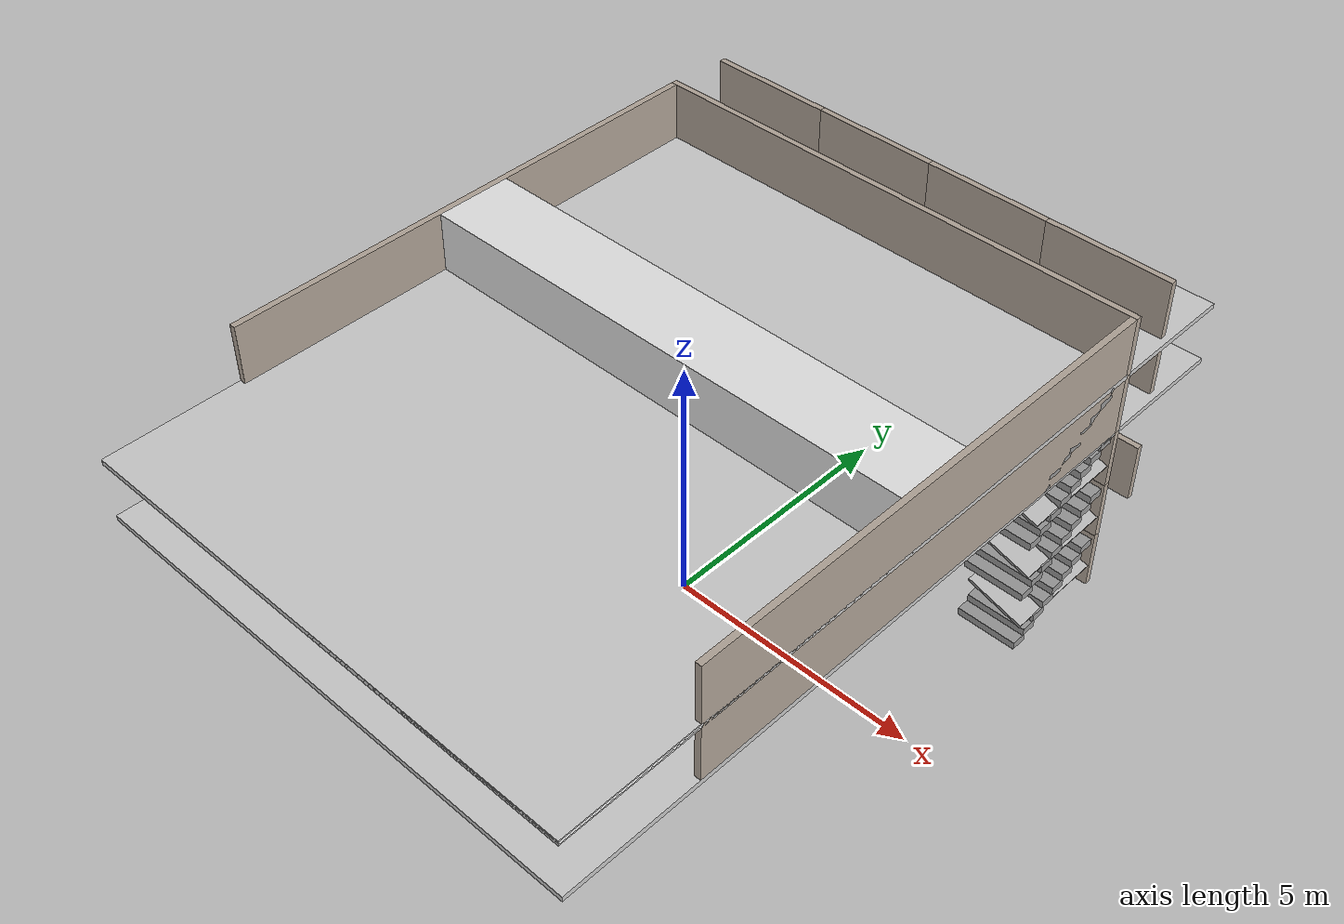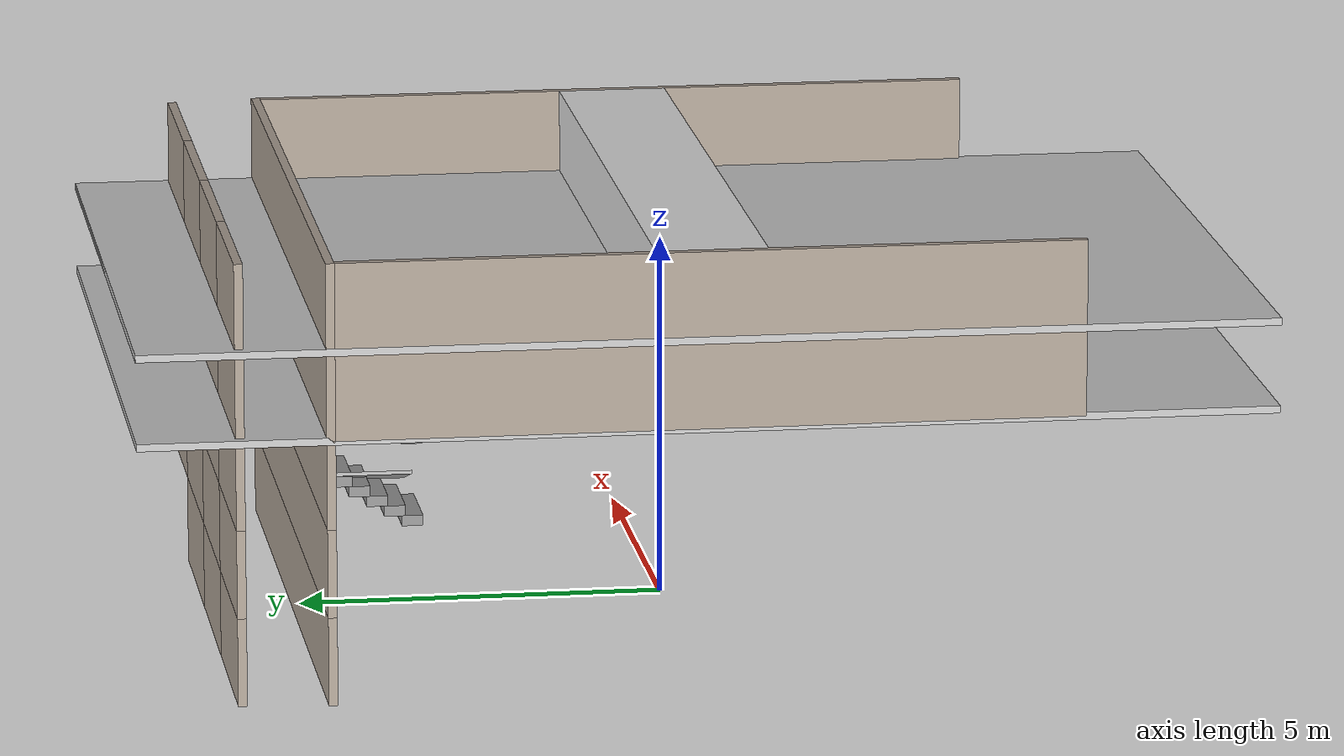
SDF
<sdf version="1.7">
 <model name="HotelBuilding">
  <static>true</static>
  <link name="corridor_front_wall_f0">
   <pose>0 5.06 0.6 0 0 0</pose>
   <visual name="visual">
    <geometry><box><size>10.24 0.12 1.2</size></box></geometry>
    <material><ambient>0.6 0.55 0.5 1</ambient><diffuse>0.7 0.65 0.6 1</diffuse></material>
   </visual>
   <collision name="collision"><geometry><box><size>10.24 0.12 1.2</size></box></geometry></collision>
  </link>
  <link name="room_front_wall_f0_r0">
   <pose>-3.75 6.25 0.6 0 0 0</pose>
   <visual name="visual">
    <geometry><box><size>2.5 0.12 1.2</size></box></geometry>
    <material><ambient>0.6 0.55 0.5 1</ambient><diffuse>0.7 0.65 0.6 1</diffuse></material>
   </visual>
   <collision name="collision"><geometry><box><size>2.5 0.12 1.2</size></box></geometry></collision>
  </link>
  <link name="room_front_wall_f0_r1">
   <pose>-1.25 6.25 0.6 0 0 0</pose>
   <visual name="visual">
    <geometry><box><size>2.5 0.12 1.2</size></box></geometry>
    <material><ambient>0.6 0.55 0.5 1</ambient><diffuse>0.7 0.65 0.6 1</diffuse></material>
   </visual>
   <collision name="collision"><geometry><box><size>2.5 0.12 1.2</size></box></geometry></collision>
  </link>
  <link name="room_front_wall_f0_r2">
   <pose>1.25 6.25 0.6 0 0 0</pose>
   <visual name="visual">
    <geometry><box><size>2.5 0.12 1.2</size></box></geometry>
    <material><ambient>0.6 0.55 0.5 1</ambient><diffuse>0.7 0.65 0.6 1</diffuse></material>
   </visual>
   <collision name="collision"><geometry><box><size>2.5 0.12 1.2</size></box></geometry></collision>
  </link>
  <link name="corridor_front_wall_f1">
   <pose>0 5.06 1.7999999999999998 0 0 0</pose>
   <visual name="visual">
    <geometry><box><size>10.24 0.12 1.2</size></box></geometry>
    <material><ambient>0.6 0.55 0.5 1</ambient><diffuse>0.7 0.65 0.6 1</diffuse></material>
   </visual>
   <collision name="collision"><geometry><box><size>10.24 0.12 1.2</size></box></geometry></collision>
  </link>
  <link name="room_front_wall_f1_r0">
   <pose>-3.75 6.25 1.7999999999999998 0 0 0</pose>
   <visual name="visual">
    <geometry><box><size>2.5 0.12 1.2</size></box></geometry>
    <material><ambient>0.6 0.55 0.5 1</ambient><diffuse>0.7 0.65 0.6 1</diffuse></material>
   </visual>
   <collision name="collision"><geometry><box><size>2.5 0.12 1.2</size></box></geometry></collision>
  </link>
  <link name="room_front_wall_f1_r1">
   <pose>-1.25 6.25 1.7999999999999998 0 0 0</pose>
   <visual name="visual">
    <geometry><box><size>2.5 0.12 1.2</size></box></geometry>
    <material><ambient>0.6 0.55 0.5 1</ambient><diffuse>0.7 0.65 0.6 1</diffuse></material>
   </visual>
   <collision name="collision"><geometry><box><size>2.5 0.12 1.2</size></box></geometry></collision>
  </link>
  <link name="room_front_wall_f1_r2">
   <pose>1.25 6.25 1.7999999999999998 0 0 0</pose>
   <visual name="visual">
    <geometry><box><size>2.5 0.12 1.2</size></box></geometry>
    <material><ambient>0.6 0.55 0.5 1</ambient><diffuse>0.7 0.65 0.6 1</diffuse></material>
   </visual>
   <collision name="collision"><geometry><box><size>2.5 0.12 1.2</size></box></geometry></collision>
  </link>
  <link name="room_front_wall_f1_r3">
   <pose>3.75 6.25 1.7999999999999998 0 0 0</pose>
   <visual name="visual">
    <geometry><box><size>2.5 0.12 1.2</size></box></geometry>
    <material><ambient>0.6 0.55 0.5 1</ambient><diffuse>0.7 0.65 0.6 1</diffuse></material>
   </visual>
   <collision name="collision"><geometry><box><size>2.5 0.12 1.2</size></box></geometry></collision>
  </link>
  <link name="corridor_front_wall_f2">
   <pose>0 5.06 3.0 0 0 0</pose>
   <visual name="visual">
    <geometry><box><size>10.24 0.12 1.2</size></box></geometry>
    <material><ambient>0.6 0.55 0.5 1</ambient><diffuse>0.7 0.65 0.6 1</diffuse></material>
   </visual>
   <collision name="collision"><geometry><box><size>10.24 0.12 1.2</size></box></geometry></collision>
  </link>
  <link name="room_front_wall_f2_r0">
   <pose>-3.75 6.25 3.0 0 0 0</pose>
   <visual name="visual">
    <geometry><box><size>2.5 0.12 1.2</size></box></geometry>
    <material><ambient>0.6 0.55 0.5 1</ambient><diffuse>0.7 0.65 0.6 1</diffuse></material>
   </visual>
   <collision name="collision"><geometry><box><size>2.5 0.12 1.2</size></box></geometry></collision>
  </link>
  <link name="room_front_wall_f2_r1">
   <pose>-1.25 6.25 3.0 0 0 0</pose>
   <visual name="visual">
    <geometry><box><size>2.5 0.12 1.2</size></box></geometry>
    <material><ambient>0.6 0.55 0.5 1</ambient><diffuse>0.7 0.65 0.6 1</diffuse></material>
   </visual>
   <collision name="collision"><geometry><box><size>2.5 0.12 1.2</size></box></geometry></collision>
  </link>
  <link name="room_front_wall_f2_r2">
   <pose>1.25 6.25 3.0 0 0 0</pose>
   <visual name="visual">
    <geometry><box><size>2.5 0.12 1.2</size></box></geometry>
    <material><ambient>0.6 0.55 0.5 1</ambient><diffuse>0.7 0.65 0.6 1</diffuse></material>
   </visual>
   <collision name="collision"><geometry><box><size>2.5 0.12 1.2</size></box></geometry></collision>
  </link>
  <link name="floor_base_f3">
   <pose>0 0 3.5999999999999996 0 0 0</pose>
   <visual name="visual">
    <geometry><box><size>10.24 15.24 0.1</size></box></geometry>
    <material><ambient>0.7 0.7 0.7 1</ambient><diffuse>0.8 0.8 0.8 1</diffuse></material>
   </visual>
   <collision name="collision">
    <geometry><box><size>10.24 15.24 0.1</size></box></geometry>
    <surface><friction><ode><mu>1.0</mu><mu2>1.0</mu2></ode></friction></surface>
   </collision>
  </link>
  <link name="corridor_f3">
   <pose>0 0 4.199999999999999 0 0 0</pose>
   <visual name="visual">
    <geometry><box><size>10.0 1.5 1.2</size></box></geometry>
    <material><ambient>0.85 0.85 0.85 1</ambient><diffuse>0.9 0.9 0.9 1</diffuse></material>
   </visual>
   <collision name="collision">
    <geometry><box><size>10.0 1.5 1.2</size></box></geometry>
    <surface><friction><ode><mu>1.0</mu><mu2>1.0</mu2></ode></friction></surface>
   </collision>
  </link>
  <link name="corridor_front_wall_f3">
   <pose>0 5.06 4.199999999999999 0 0 0</pose>
   <visual name="visual">
    <geometry><box><size>10.24 0.12 1.2</size></box></geometry>
    <material><ambient>0.6 0.55 0.5 1</ambient><diffuse>0.7 0.65 0.6 1</diffuse></material>
   </visual>
   <collision name="collision"><geometry><box><size>10.24 0.12 1.2</size></box></geometry></collision>
  </link>
  <link name="room_front_wall_f3_r0">
   <pose>-3.75 6.25 4.199999999999999 0 0 0</pose>
   <visual name="visual">
    <geometry><box><size>2.5 0.12 1.2</size></box></geometry>
    <material><ambient>0.6 0.55 0.5 1</ambient><diffuse>0.7 0.65 0.6 1</diffuse></material>
   </visual>
   <collision name="collision"><geometry><box><size>2.5 0.12 1.2</size></box></geometry></collision>
  </link>
  <link name="room_front_wall_f3_r1">
   <pose>-1.25 6.25 4.199999999999999 0 0 0</pose>
   <visual name="visual">
    <geometry><box><size>2.5 0.12 1.2</size></box></geometry>
    <material><ambient>0.6 0.55 0.5 1</ambient><diffuse>0.7 0.65 0.6 1</diffuse></material>
   </visual>
   <collision name="collision"><geometry><box><size>2.5 0.12 1.2</size></box></geometry></collision>
  </link>
  <link name="room_front_wall_f3_r2">
   <pose>1.25 6.25 4.199999999999999 0 0 0</pose>
   <visual name="visual">
    <geometry><box><size>2.5 0.12 1.2</size></box></geometry>
    <material><ambient>0.6 0.55 0.5 1</ambient><diffuse>0.7 0.65 0.6 1</diffuse></material>
   </visual>
   <collision name="collision"><geometry><box><size>2.5 0.12 1.2</size></box></geometry></collision>
  </link>
  <link name="room_front_wall_f3_r3">
   <pose>3.75 6.25 4.199999999999999 0 0 0</pose>
   <visual name="visual">
    <geometry><box><size>2.5 0.12 1.2</size></box></geometry>
    <material><ambient>0.6 0.55 0.5 1</ambient><diffuse>0.7 0.65 0.6 1</diffuse></material>
   </visual>
   <collision name="collision"><geometry><box><size>2.5 0.12 1.2</size></box></geometry></collision>
  </link>
  <link name="corridor_left_wall_f3">
   <pose>-5.0600000000000005 0 4.199999999999999 0 0 0</pose>
   <visual name="visual">
    <geometry><box><size>0.12 10.0 1.2</size></box></geometry>
    <material><ambient>0.6 0.55 0.5 1</ambient><diffuse>0.7 0.65 0.6 1</diffuse></material>
   </visual>
   <collision name="collision"><geometry><box><size>0.12 10.0 1.2</size></box></geometry></collision>
  </link>
  <link name="corridor_right_wall_f3">
   <pose>5.0600000000000005 0 4.199999999999999 0 0 0</pose>
   <visual name="visual">
    <geometry><box><size>0.12 10.0 1.2</size></box></geometry>
    <material><ambient>0.6 0.55 0.5 1</ambient><diffuse>0.7 0.65 0.6 1</diffuse></material>
   </visual>
   <collision name="collision"><geometry><box><size>0.12 10.0 1.2</size></box></geometry></collision>
  </link>
  <link name="ceiling_f3">
   <pose>0 0 4.8 0 0 0</pose>
   <visual name="visual">
    <geometry><box><size>10.24 15.24 0.05</size></box></geometry>
    <material><ambient>0.9 0.9 0.9 1</ambient><diffuse>1.0 1.0 1.0 1</diffuse></material>
   </visual>
   <collision name="collision"><geometry><box><size>10.24 15.24 0.05</size></box></geometry></collision>
  </link>
  <link name="floor_base_f4">
   <pose>0 0 4.8 0 0 0</pose>
   <visual name="visual">
    <geometry><box><size>10.24 15.24 0.1</size></box></geometry>
    <material><ambient>0.7 0.7 0.7 1</ambient><diffuse>0.8 0.8 0.8 1</diffuse></material>
   </visual>
   <collision name="collision">
    <geometry><box><size>10.24 15.24 0.1</size></box></geometry>
    <surface><friction><ode><mu>1.0</mu><mu2>1.0</mu2></ode></friction></surface>
   </collision>
  </link>
  <link name="corridor_f4">
   <pose>0 0 5.3999999999999995 0 0 0</pose>
   <visual name="visual">
    <geometry><box><size>10.0 1.5 1.2</size></box></geometry>
    <material><ambient>0.85 0.85 0.85 1</ambient><diffuse>0.9 0.9 0.9 1</diffuse></material>
   </visual>
   <collision name="collision">
    <geometry><box><size>10.0 1.5 1.2</size></box></geometry>
    <surface><friction><ode><mu>1.0</mu><mu2>1.0</mu2></ode></friction></surface>
   </collision>
  </link>
  <link name="corridor_front_wall_f4">
   <pose>0 5.06 5.3999999999999995 0 0 0</pose>
   <visual name="visual">
    <geometry><box><size>10.24 0.12 1.2</size></box></geometry>
    <material><ambient>0.6 0.55 0.5 1</ambient><diffuse>0.7 0.65 0.6 1</diffuse></material>
   </visual>
   <collision name="collision"><geometry><box><size>10.24 0.12 1.2</size></box></geometry></collision>
  </link>
  <link name="room_front_wall_f4_r0">
   <pose>-3.75 6.25 5.3999999999999995 0 0 0</pose>
   <visual name="visual">
    <geometry><box><size>2.5 0.12 1.2</size></box></geometry>
    <material><ambient>0.6 0.55 0.5 1</ambient><diffuse>0.7 0.65 0.6 1</diffuse></material>
   </visual>
   <collision name="collision"><geometry><box><size>2.5 0.12 1.2</size></box></geometry></collision>
  </link>
  <link name="room_front_wall_f4_r1">
   <pose>-1.25 6.25 5.3999999999999995 0 0 0</pose>
   <visual name="visual">
    <geometry><box><size>2.5 0.12 1.2</size></box></geometry>
    <material><ambient>0.6 0.55 0.5 1</ambient><diffuse>0.7 0.65 0.6 1</diffuse></material>
   </visual>
   <collision name="collision"><geometry><box><size>2.5 0.12 1.2</size></box></geometry></collision>
  </link>
  <link name="room_front_wall_f4_r2">
   <pose>1.25 6.25 5.3999999999999995 0 0 0</pose>
   <visual name="visual">
    <geometry><box><size>2.5 0.12 1.2</size></box></geometry>
    <material><ambient>0.6 0.55 0.5 1</ambient><diffuse>0.7 0.65 0.6 1</diffuse></material>
   </visual>
   <collision name="collision"><geometry><box><size>2.5 0.12 1.2</size></box></geometry></collision>
  </link>
  <link name="room_front_wall_f4_r3">
   <pose>3.75 6.25 5.3999999999999995 0 0 0</pose>
   <visual name="visual">
    <geometry><box><size>2.5 0.12 1.2</size></box></geometry>
    <material><ambient>0.6 0.55 0.5 1</ambient><diffuse>0.7 0.65 0.6 1</diffuse></material>
   </visual>
   <collision name="collision"><geometry><box><size>2.5 0.12 1.2</size></box></geometry></collision>
  </link>
  <link name="corridor_left_wall_f4">
   <pose>-5.0600000000000005 0 5.3999999999999995 0 0 0</pose>
   <visual name="visual">
    <geometry><box><size>0.12 10.0 1.2</size></box></geometry>
    <material><ambient>0.6 0.55 0.5 1</ambient><diffuse>0.7 0.65 0.6 1</diffuse></material>
   </visual>
   <collision name="collision"><geometry><box><size>0.12 10.0 1.2</size></box></geometry></collision>
  </link>
  <link name="corridor_right_wall_f4">
   <pose>5.0600000000000005 0 5.3999999999999995 0 0 0</pose>
   <visual name="visual">
    <geometry><box><size>0.12 10.0 1.2</size></box></geometry>
    <material><ambient>0.6 0.55 0.5 1</ambient><diffuse>0.7 0.65 0.6 1</diffuse></material>
   </visual>
   <collision name="collision"><geometry><box><size>0.12 10.0 1.2</size></box></geometry></collision>
  </link>
  <link name="stair_f0_step0">
   <pose>4.5200000000000005 3.0 0.075 0 0 0</pose>
   <visual name="visual">
    <geometry><box><size>1.2 0.3 0.15</size></box></geometry>
    <material><ambient>0.5 0.5 0.5 1</ambient><diffuse>0.6 0.6 0.6 1</diffuse></material>
   </visual>
   <collision name="collision">
    <geometry><box><size>1.2 0.3 0.15</size></box></geometry>
    <surface><friction><ode><mu>1.5</mu><mu2>1.5</mu2></ode></friction></surface>
   </collision>
  </link>
  <link name="stair_f0_step1">
   <pose>4.5200000000000005 3.25 0.22499999999999998 0 0 0</pose>
   <visual name="visual">
    <geometry><box><size>1.2 0.3 0.15</size></box></geometry>
    <material><ambient>0.5 0.5 0.5 1</ambient><diffuse>0.6 0.6 0.6 1</diffuse></material>
   </visual>
   <collision name="collision">
    <geometry><box><size>1.2 0.3 0.15</size></box></geometry>
    <surface><friction><ode><mu>1.5</mu><mu2>1.5</mu2></ode></friction></surface>
   </collision>
  </link>
  <link name="stair_f0_step2">
   <pose>4.5200000000000005 3.5 0.375 0 0 0</pose>
   <visual name="visual">
    <geometry><box><size>1.2 0.3 0.15</size></box></geometry>
    <material><ambient>0.5 0.5 0.5 1</ambient><diffuse>0.6 0.6 0.6 1</diffuse></material>
   </visual>
   <collision name="collision">
    <geometry><box><size>1.2 0.3 0.15</size></box></geometry>
    <surface><friction><ode><mu>1.5</mu><mu2>1.5</mu2></ode></friction></surface>
   </collision>
  </link>
  <link name="stair_f0_step3">
   <pose>4.5200000000000005 3.75 0.5249999999999999 0 0 0</pose>
   <visual name="visual">
    <geometry><box><size>1.2 0.3 0.15</size></box></geometry>
    <material><ambient>0.5 0.5 0.5 1</ambient><diffuse>0.6 0.6 0.6 1</diffuse></material>
   </visual>
   <collision name="collision">
    <geometry><box><size>1.2 0.3 0.15</size></box></geometry>
    <surface><friction><ode><mu>1.5</mu><mu2>1.5</mu2></ode></friction></surface>
   </collision>
  </link>
  <link name="stair_f0_step4">
   <pose>4.5200000000000005 4.0 0.6749999999999999 0 0 0</pose>
   <visual name="visual">
    <geometry><box><size>1.2 0.3 0.15</size></box></geometry>
    <material><ambient>0.5 0.5 0.5 1</ambient><diffuse>0.6 0.6 0.6 1</diffuse></material>
   </visual>
   <collision name="collision">
    <geometry><box><size>1.2 0.3 0.15</size></box></geometry>
    <surface><friction><ode><mu>1.5</mu><mu2>1.5</mu2></ode></friction></surface>
   </collision>
  </link>
  <link name="stair_f0_step5">
   <pose>4.5200000000000005 4.25 0.825 0 0 0</pose>
   <visual name="visual">
    <geometry><box><size>1.2 0.3 0.15</size></box></geometry>
    <material><ambient>0.5 0.5 0.5 1</ambient><diffuse>0.6 0.6 0.6 1</diffuse></material>
   </visual>
   <collision name="collision">
    <geometry><box><size>1.2 0.3 0.15</size></box></geometry>
    <surface><friction><ode><mu>1.5</mu><mu2>1.5</mu2></ode></friction></surface>
   </collision>
  </link>
  <link name="stair_f0_step6">
   <pose>4.5200000000000005 4.5 0.9749999999999999 0 0 0</pose>
   <visual name="visual">
    <geometry><box><size>1.2 0.3 0.15</size></box></geometry>
    <material><ambient>0.5 0.5 0.5 1</ambient><diffuse>0.6 0.6 0.6 1</diffuse></material>
   </visual>
   <collision name="collision">
    <geometry><box><size>1.2 0.3 0.15</size></box></geometry>
    <surface><friction><ode><mu>1.5</mu><mu2>1.5</mu2></ode></friction></surface>
   </collision>
  </link>
  <link name="stair_f0_step7">
   <pose>4.5200000000000005 4.75 1.125 0 0 0</pose>
   <visual name="visual">
    <geometry><box><size>1.2 0.3 0.15</size></box></geometry>
    <material><ambient>0.5 0.5 0.5 1</ambient><diffuse>0.6 0.6 0.6 1</diffuse></material>
   </visual>
   <collision name="collision">
    <geometry><box><size>1.2 0.3 0.15</size></box></geometry>
    <surface><friction><ode><mu>1.5</mu><mu2>1.5</mu2></ode></friction></surface>
   </collision>
  </link>
  <link name="stair_ramp_f0">
   <pose>4.5200000000000005 4.0 0.6 0 0.3 0</pose>
   <visual name="visual">
    <geometry><box><size>1.2 2.0 0.05</size></box></geometry>
    <material><ambient>0.6 0.6 0.6 1</ambient><diffuse>0.7 0.7 0.7 1</diffuse></material>
   </visual>
   <collision name="collision">
    <geometry><box><size>1.2 2.0 0.05</size></box></geometry>
    <surface><friction><ode><mu>1.5</mu><mu2>1.5</mu2></ode></friction></surface>
   </collision>
  </link>
  <link name="stair_f1_step0">
   <pose>4.5200000000000005 3.0 1.275 0 0 0</pose>
   <visual name="visual">
    <geometry><box><size>1.2 0.3 0.15</size></box></geometry>
    <material><ambient>0.5 0.5 0.5 1</ambient><diffuse>0.6 0.6 0.6 1</diffuse></material>
   </visual>
   <collision name="collision">
    <geometry><box><size>1.2 0.3 0.15</size></box></geometry>
    <surface><friction><ode><mu>1.5</mu><mu2>1.5</mu2></ode></friction></surface>
   </collision>
  </link>
  <link name="stair_f1_step1">
   <pose>4.5200000000000005 3.25 1.4249999999999998 0 0 0</pose>
   <visual name="visual">
    <geometry><box><size>1.2 0.3 0.15</size></box></geometry>
    <material><ambient>0.5 0.5 0.5 1</ambient><diffuse>0.6 0.6 0.6 1</diffuse></material>
   </visual>
   <collision name="collision">
    <geometry><box><size>1.2 0.3 0.15</size></box></geometry>
    <surface><friction><ode><mu>1.5</mu><mu2>1.5</mu2></ode></friction></surface>
   </collision>
  </link>
  <link name="stair_f1_step2">
   <pose>4.5200000000000005 3.5 1.575 0 0 0</pose>
   <visual name="visual">
    <geometry><box><size>1.2 0.3 0.15</size></box></geometry>
    <material><ambient>0.5 0.5 0.5 1</ambient><diffuse>0.6 0.6 0.6 1</diffuse></material>
   </visual>
   <collision name="collision">
    <geometry><box><size>1.2 0.3 0.15</size></box></geometry>
    <surface><friction><ode><mu>1.5</mu><mu2>1.5</mu2></ode></friction></surface>
   </collision>
  </link>
  <link name="stair_f1_step3">
   <pose>4.5200000000000005 3.75 1.7249999999999999 0 0 0</pose>
   <visual name="visual">
    <geometry><box><size>1.2 0.3 0.15</size></box></geometry>
    <material><ambient>0.5 0.5 0.5 1</ambient><diffuse>0.6 0.6 0.6 1</diffuse></material>
   </visual>
   <collision name="collision">
    <geometry><box><size>1.2 0.3 0.15</size></box></geometry>
    <surface><friction><ode><mu>1.5</mu><mu2>1.5</mu2></ode></friction></surface>
   </collision>
  </link>
  <link name="stair_f1_step4">
   <pose>4.5200000000000005 4.0 1.875 0 0 0</pose>
   <visual name="visual">
    <geometry><box><size>1.2 0.3 0.15</size></box></geometry>
    <material><ambient>0.5 0.5 0.5 1</ambient><diffuse>0.6 0.6 0.6 1</diffuse></material>
   </visual>
   <collision name="collision">
    <geometry><box><size>1.2 0.3 0.15</size></box></geometry>
    <surface><friction><ode><mu>1.5</mu><mu2>1.5</mu2></ode></friction></surface>
   </collision>
  </link>
  <link name="stair_f1_step5">
   <pose>4.5200000000000005 4.25 2.025 0 0 0</pose>
   <visual name="visual">
    <geometry><box><size>1.2 0.3 0.15</size></box></geometry>
    <material><ambient>0.5 0.5 0.5 1</ambient><diffuse>0.6 0.6 0.6 1</diffuse></material>
   </visual>
   <collision name="collision">
    <geometry><box><size>1.2 0.3 0.15</size></box></geometry>
    <surface><friction><ode><mu>1.5</mu><mu2>1.5</mu2></ode></friction></surface>
   </collision>
  </link>
  <link name="stair_f1_step6">
   <pose>4.5200000000000005 4.5 2.175 0 0 0</pose>
   <visual name="visual">
    <geometry><box><size>1.2 0.3 0.15</size></box></geometry>
    <material><ambient>0.5 0.5 0.5 1</ambient><diffuse>0.6 0.6 0.6 1</diffuse></material>
   </visual>
   <collision name="collision">
    <geometry><box><size>1.2 0.3 0.15</size></box></geometry>
    <surface><friction><ode><mu>1.5</mu><mu2>1.5</mu2></ode></friction></surface>
   </collision>
  </link>
  <link name="stair_f1_step7">
   <pose>4.5200000000000005 4.75 2.325 0 0 0</pose>
   <visual name="visual">
    <geometry><box><size>1.2 0.3 0.15</size></box></geometry>
    <material><ambient>0.5 0.5 0.5 1</ambient><diffuse>0.6 0.6 0.6 1</diffuse></material>
   </visual>
   <collision name="collision">
    <geometry><box><size>1.2 0.3 0.15</size></box></geometry>
    <surface><friction><ode><mu>1.5</mu><mu2>1.5</mu2></ode></friction></surface>
   </collision>
  </link>
  <link name="stair_ramp_f1">
   <pose>4.5200000000000005 4.0 1.7999999999999998 0 0.3 0</pose>
   <visual name="visual">
    <geometry><box><size>1.2 2.0 0.05</size></box></geometry>
    <material><ambient>0.6 0.6 0.6 1</ambient><diffuse>0.7 0.7 0.7 1</diffuse></material>
   </visual>
   <collision name="collision">
    <geometry><box><size>1.2 2.0 0.05</size></box></geometry>
    <surface><friction><ode><mu>1.5</mu><mu2>1.5</mu2></ode></friction></surface>
   </collision>
  </link>
  <link name="stair_f2_step0">
   <pose>4.5200000000000005 3.0 2.475 0 0 0</pose>
   <visual name="visual">
    <geometry><box><size>1.2 0.3 0.15</size></box></geometry>
    <material><ambient>0.5 0.5 0.5 1</ambient><diffuse>0.6 0.6 0.6 1</diffuse></material>
   </visual>
   <collision name="collision">
    <geometry><box><size>1.2 0.3 0.15</size></box></geometry>
    <surface><friction><ode><mu>1.5</mu><mu2>1.5</mu2></ode></friction></surface>
   </collision>
  </link>
  <link name="stair_f2_step1">
   <pose>4.5200000000000005 3.25 2.625 0 0 0</pose>
   <visual name="visual">
    <geometry><box><size>1.2 0.3 0.15</size></box></geometry>
    <material><ambient>0.5 0.5 0.5 1</ambient><diffuse>0.6 0.6 0.6 1</diffuse></material>
   </visual>
   <collision name="collision">
    <geometry><box><size>1.2 0.3 0.15</size></box></geometry>
    <surface><friction><ode><mu>1.5</mu><mu2>1.5</mu2></ode></friction></surface>
   </collision>
  </link>
  <link name="stair_f2_step2">
   <pose>4.5200000000000005 3.5 2.775 0 0 0</pose>
   <visual name="visual">
    <geometry><box><size>1.2 0.3 0.15</size></box></geometry>
    <material><ambient>0.5 0.5 0.5 1</ambient><diffuse>0.6 0.6 0.6 1</diffuse></material>
   </visual>
   <collision name="collision">
    <geometry><box><size>1.2 0.3 0.15</size></box></geometry>
    <surface><friction><ode><mu>1.5</mu><mu2>1.5</mu2></ode></friction></surface>
   </collision>
  </link>
  <link name="stair_f2_step3">
   <pose>4.5200000000000005 3.75 2.925 0 0 0</pose>
   <visual name="visual">
    <geometry><box><size>1.2 0.3 0.15</size></box></geometry>
    <material><ambient>0.5 0.5 0.5 1</ambient><diffuse>0.6 0.6 0.6 1</diffuse></material>
   </visual>
   <collision name="collision">
    <geometry><box><size>1.2 0.3 0.15</size></box></geometry>
    <surface><friction><ode><mu>1.5</mu><mu2>1.5</mu2></ode></friction></surface>
   </collision>
  </link>
  <link name="stair_f2_step4">
   <pose>4.5200000000000005 4.0 3.075 0 0 0</pose>
   <visual name="visual">
    <geometry><box><size>1.2 0.3 0.15</size></box></geometry>
    <material><ambient>0.5 0.5 0.5 1</ambient><diffuse>0.6 0.6 0.6 1</diffuse></material>
   </visual>
   <collision name="collision">
    <geometry><box><size>1.2 0.3 0.15</size></box></geometry>
    <surface><friction><ode><mu>1.5</mu><mu2>1.5</mu2></ode></friction></surface>
   </collision>
  </link>
  <link name="stair_f2_step5">
   <pose>4.5200000000000005 4.25 3.225 0 0 0</pose>
   <visual name="visual">
    <geometry><box><size>1.2 0.3 0.15</size></box></geometry>
    <material><ambient>0.5 0.5 0.5 1</ambient><diffuse>0.6 0.6 0.6 1</diffuse></material>
   </visual>
   <collision name="collision">
    <geometry><box><size>1.2 0.3 0.15</size></box></geometry>
    <surface><friction><ode><mu>1.5</mu><mu2>1.5</mu2></ode></friction></surface>
   </collision>
  </link>
  <link name="stair_f2_step6">
   <pose>4.5200000000000005 4.5 3.375 0 0 0</pose>
   <visual name="visual">
    <geometry><box><size>1.2 0.3 0.15</size></box></geometry>
    <material><ambient>0.5 0.5 0.5 1</ambient><diffuse>0.6 0.6 0.6 1</diffuse></material>
   </visual>
   <collision name="collision">
    <geometry><box><size>1.2 0.3 0.15</size></box></geometry>
    <surface><friction><ode><mu>1.5</mu><mu2>1.5</mu2></ode></friction></surface>
   </collision>
  </link>
  <link name="stair_f2_step7">
   <pose>4.5200000000000005 4.75 3.5250000000000004 0 0 0</pose>
   <visual name="visual">
    <geometry><box><size>1.2 0.3 0.15</size></box></geometry>
    <material><ambient>0.5 0.5 0.5 1</ambient><diffuse>0.6 0.6 0.6 1</diffuse></material>
   </visual>
   <collision name="collision">
    <geometry><box><size>1.2 0.3 0.15</size></box></geometry>
    <surface><friction><ode><mu>1.5</mu><mu2>1.5</mu2></ode></friction></surface>
   </collision>
  </link>
  <link name="stair_ramp_f2">
   <pose>4.5200000000000005 4.0 3.0 0 0.3 0</pose>
   <visual name="visual">
    <geometry><box><size>1.2 2.0 0.05</size></box></geometry>
    <material><ambient>0.6 0.6 0.6 1</ambient><diffuse>0.7 0.7 0.7 1</diffuse></material>
   </visual>
   <collision name="collision">
    <geometry><box><size>1.2 2.0 0.05</size></box></geometry>
    <surface><friction><ode><mu>1.5</mu><mu2>1.5</mu2></ode></friction></surface>
   </collision>
  </link>
  <link name="stair_f3_step0">
   <pose>4.5200000000000005 3.0 3.675 0 0 0</pose>
   <visual name="visual">
    <geometry><box><size>1.2 0.3 0.15</size></box></geometry>
    <material><ambient>0.5 0.5 0.5 1</ambient><diffuse>0.6 0.6 0.6 1</diffuse></material>
   </visual>
   <collision name="collision">
    <geometry><box><size>1.2 0.3 0.15</size></box></geometry>
    <surface><friction><ode><mu>1.5</mu><mu2>1.5</mu2></ode></friction></surface>
   </collision>
  </link>
  <link name="stair_f3_step1">
   <pose>4.5200000000000005 3.25 3.8249999999999997 0 0 0</pose>
   <visual name="visual">
    <geometry><box><size>1.2 0.3 0.15</size></box></geometry>
    <material><ambient>0.5 0.5 0.5 1</ambient><diffuse>0.6 0.6 0.6 1</diffuse></material>
   </visual>
   <collision name="collision">
    <geometry><box><size>1.2 0.3 0.15</size></box></geometry>
    <surface><friction><ode><mu>1.5</mu><mu2>1.5</mu2></ode></friction></surface>
   </collision>
  </link>
  <link name="stair_f3_step2">
   <pose>4.5200000000000005 3.5 3.9749999999999996 0 0 0</pose>
   <visual name="visual">
    <geometry><box><size>1.2 0.3 0.15</size></box></geometry>
    <material><ambient>0.5 0.5 0.5 1</ambient><diffuse>0.6 0.6 0.6 1</diffuse></material>
   </visual>
   <collision name="collision">
    <geometry><box><size>1.2 0.3 0.15</size></box></geometry>
    <surface><friction><ode><mu>1.5</mu><mu2>1.5</mu2></ode></friction></surface>
   </collision>
  </link>
  <link name="stair_f3_step3">
   <pose>4.5200000000000005 3.75 4.125 0 0 0</pose>
   <visual name="visual">
    <geometry><box><size>1.2 0.3 0.15</size></box></geometry>
    <material><ambient>0.5 0.5 0.5 1</ambient><diffuse>0.6 0.6 0.6 1</diffuse></material>
   </visual>
   <collision name="collision">
    <geometry><box><size>1.2 0.3 0.15</size></box></geometry>
    <surface><friction><ode><mu>1.5</mu><mu2>1.5</mu2></ode></friction></surface>
   </collision>
  </link>
  <link name="stair_f3_step4">
   <pose>4.5200000000000005 4.0 4.2749999999999995 0 0 0</pose>
   <visual name="visual">
    <geometry><box><size>1.2 0.3 0.15</size></box></geometry>
    <material><ambient>0.5 0.5 0.5 1</ambient><diffuse>0.6 0.6 0.6 1</diffuse></material>
   </visual>
   <collision name="collision">
    <geometry><box><size>1.2 0.3 0.15</size></box></geometry>
    <surface><friction><ode><mu>1.5</mu><mu2>1.5</mu2></ode></friction></surface>
   </collision>
  </link>
  <link name="stair_f3_step5">
   <pose>4.5200000000000005 4.25 4.425 0 0 0</pose>
   <visual name="visual">
    <geometry><box><size>1.2 0.3 0.15</size></box></geometry>
    <material><ambient>0.5 0.5 0.5 1</ambient><diffuse>0.6 0.6 0.6 1</diffuse></material>
   </visual>
   <collision name="collision">
    <geometry><box><size>1.2 0.3 0.15</size></box></geometry>
    <surface><friction><ode><mu>1.5</mu><mu2>1.5</mu2></ode></friction></surface>
   </collision>
  </link>
  <link name="stair_f3_step6">
   <pose>4.5200000000000005 4.5 4.574999999999999 0 0 0</pose>
   <visual name="visual">
    <geometry><box><size>1.2 0.3 0.15</size></box></geometry>
    <material><ambient>0.5 0.5 0.5 1</ambient><diffuse>0.6 0.6 0.6 1</diffuse></material>
   </visual>
   <collision name="collision">
    <geometry><box><size>1.2 0.3 0.15</size></box></geometry>
    <surface><friction><ode><mu>1.5</mu><mu2>1.5</mu2></ode></friction></surface>
   </collision>
  </link>
  <link name="stair_f3_step7">
   <pose>4.5200000000000005 4.75 4.725 0 0 0</pose>
   <visual name="visual">
    <geometry><box><size>1.2 0.3 0.15</size></box></geometry>
    <material><ambient>0.5 0.5 0.5 1</ambient><diffuse>0.6 0.6 0.6 1</diffuse></material>
   </visual>
   <collision name="collision">
    <geometry><box><size>1.2 0.3 0.15</size></box></geometry>
    <surface><friction><ode><mu>1.5</mu><mu2>1.5</mu2></ode></friction></surface>
   </collision>
  </link>
  <link name="stair_ramp_f3">
   <pose>4.5200000000000005 4.0 4.199999999999999 0 0.3 0</pose>
   <visual name="visual">
    <geometry><box><size>1.2 2.0 0.05</size></box></geometry>
    <material><ambient>0.6 0.6 0.6 1</ambient><diffuse>0.7 0.7 0.7 1</diffuse></material>
   </visual>
   <collision name="collision">
    <geometry><box><size>1.2 2.0 0.05</size></box></geometry>
    <surface><friction><ode><mu>1.5</mu><mu2>1.5</mu2></ode></friction></surface>
   </collision>
  </link>
 </model>
</sdf>
